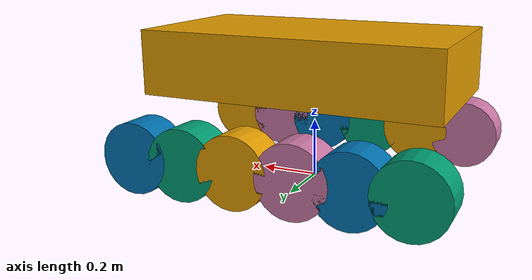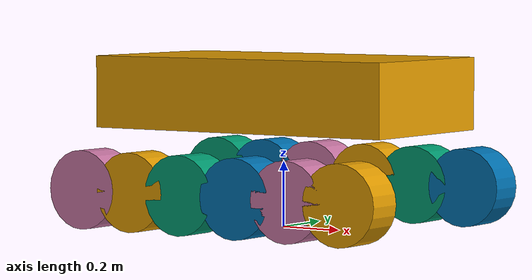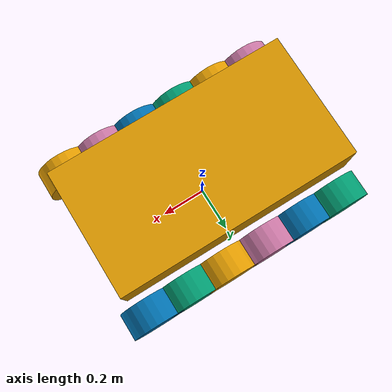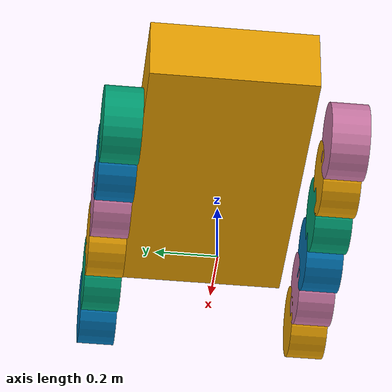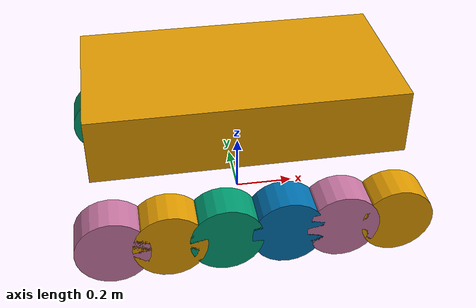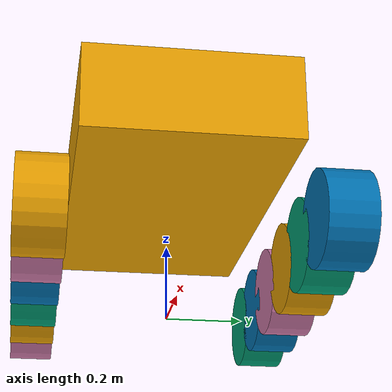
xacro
<?xml version='1.0'?>
<robot xmlns:xacro='http://www.ros.org/wiki/xacro' name='garden_tracked_guided'>
  <xacro:property name='variant' value='tracked_guided'/>
  <xacro:property name='mass_kg' value='65.0'/>
  <xacro:property name='track_gauge' value='0.7'/>
  <xacro:property name='wheel_radius' value='0.12'/>
  <xacro:property name='body_clearance' value='0.32'/>
  <link name='base_link'>
    <visual name='TRK4-BASE-001_visual'><origin xyz='0 0 0.41' rpy='0 0 0'/><geometry><box size='1.02 0.54 0.22'/></geometry></visual>
    <collision name='TRK4-BASE-001_collision'><origin xyz='0 0 0.41' rpy='0 0 0'/><geometry><box size='0.8 0.46 0.18'/></geometry></collision>
    <inertial><origin xyz='0 0 0.37' rpy='0 0 0'/><mass value='48.4'/><inertia ixx='1.3713333333333333' ixy='0' ixz='0' iyy='4.391493333333333' iyz='0' izz='5.3724'/></inertial>
  </link>
  <link name='left_carrier_0'/>
  <joint name='left_suspension_0' type='prismatic'><parent link='base_link'/><child link='left_carrier_0'/><origin xyz='-0.46 0.35 0.12' rpy='0 0 0'/><axis xyz='0 0 1'/><limit lower='-0.08' upper='0.08' effort='2500' velocity='1.5'/></joint>
  <link name='left_wheel'><visual name='TRK4-SPRUNG-GUIDE-ROLLER-001_visual_left_0'><geometry><cylinder radius='0.12' length='0.12'/></geometry></visual><collision name='TRK4-SPRUNG-GUIDE-ROLLER-001_collision_left_0'><geometry><cylinder radius='0.12' length='0.12'/></geometry></collision></link>
  <joint name='left_joint' type='continuous'><parent link='left_carrier_0'/><child link='left_wheel'/><origin xyz='0 0 0' rpy='1.57079632679 0 0'/><axis xyz='0 0 -1'/></joint>
  <link name='left_carrier_1'/>
  <joint name='left_suspension_1' type='prismatic'><parent link='base_link'/><child link='left_carrier_1'/><origin xyz='-0.28 0.35 0.12' rpy='0 0 0'/><axis xyz='0 0 1'/><limit lower='-0.08' upper='0.08' effort='2500' velocity='1.5'/></joint>
  <link name='left_wheel_1'><visual name='TRK4-SPRUNG-GUIDE-ROLLER-001_visual_left_1'><geometry><cylinder radius='0.12' length='0.12'/></geometry></visual><collision name='TRK4-SPRUNG-GUIDE-ROLLER-001_collision_left_1'><geometry><cylinder radius='0.12' length='0.12'/></geometry></collision></link>
  <joint name='left_joint_1' type='continuous'><parent link='left_carrier_1'/><child link='left_wheel_1'/><origin xyz='0 0 0' rpy='1.57079632679 0 0'/><axis xyz='0 0 -1'/></joint>
  <link name='left_carrier_2'/>
  <joint name='left_suspension_2' type='prismatic'><parent link='base_link'/><child link='left_carrier_2'/><origin xyz='-0.1 0.35 0.12' rpy='0 0 0'/><axis xyz='0 0 1'/><limit lower='-0.08' upper='0.08' effort='2500' velocity='1.5'/></joint>
  <link name='left_wheel_2'><visual name='TRK4-SPRUNG-GUIDE-ROLLER-001_visual_left_2'><geometry><cylinder radius='0.12' length='0.12'/></geometry></visual><collision name='TRK4-SPRUNG-GUIDE-ROLLER-001_collision_left_2'><geometry><cylinder radius='0.12' length='0.12'/></geometry></collision></link>
  <joint name='left_joint_2' type='continuous'><parent link='left_carrier_2'/><child link='left_wheel_2'/><origin xyz='0 0 0' rpy='1.57079632679 0 0'/><axis xyz='0 0 -1'/></joint>
  <link name='left_carrier_3'/>
  <joint name='left_suspension_3' type='prismatic'><parent link='base_link'/><child link='left_carrier_3'/><origin xyz='0.1 0.35 0.12' rpy='0 0 0'/><axis xyz='0 0 1'/><limit lower='-0.08' upper='0.08' effort='2500' velocity='1.5'/></joint>
  <link name='left_wheel_3'><visual name='TRK4-SPRUNG-GUIDE-ROLLER-001_visual_left_3'><geometry><cylinder radius='0.12' length='0.12'/></geometry></visual><collision name='TRK4-SPRUNG-GUIDE-ROLLER-001_collision_left_3'><geometry><cylinder radius='0.12' length='0.12'/></geometry></collision></link>
  <joint name='left_joint_3' type='continuous'><parent link='left_carrier_3'/><child link='left_wheel_3'/><origin xyz='0 0 0' rpy='1.57079632679 0 0'/><axis xyz='0 0 -1'/></joint>
  <link name='left_carrier_4'/>
  <joint name='left_suspension_4' type='prismatic'><parent link='base_link'/><child link='left_carrier_4'/><origin xyz='0.28 0.35 0.12' rpy='0 0 0'/><axis xyz='0 0 1'/><limit lower='-0.08' upper='0.08' effort='2500' velocity='1.5'/></joint>
  <link name='left_wheel_4'><visual name='TRK4-SPRUNG-GUIDE-ROLLER-001_visual_left_4'><geometry><cylinder radius='0.12' length='0.12'/></geometry></visual><collision name='TRK4-SPRUNG-GUIDE-ROLLER-001_collision_left_4'><geometry><cylinder radius='0.12' length='0.12'/></geometry></collision></link>
  <joint name='left_joint_4' type='continuous'><parent link='left_carrier_4'/><child link='left_wheel_4'/><origin xyz='0 0 0' rpy='1.57079632679 0 0'/><axis xyz='0 0 -1'/></joint>
  <link name='left_carrier_5'/>
  <joint name='left_suspension_5' type='prismatic'><parent link='base_link'/><child link='left_carrier_5'/><origin xyz='0.46 0.35 0.12' rpy='0 0 0'/><axis xyz='0 0 1'/><limit lower='-0.08' upper='0.08' effort='2500' velocity='1.5'/></joint>
  <link name='left_wheel_5'><visual name='TRK4-SPRUNG-GUIDE-ROLLER-001_visual_left_5'><geometry><cylinder radius='0.12' length='0.12'/></geometry></visual><collision name='TRK4-SPRUNG-GUIDE-ROLLER-001_collision_left_5'><geometry><cylinder radius='0.12' length='0.12'/></geometry></collision></link>
  <joint name='left_joint_5' type='continuous'><parent link='left_carrier_5'/><child link='left_wheel_5'/><origin xyz='0 0 0' rpy='1.57079632679 0 0'/><axis xyz='0 0 -1'/></joint>
  <link name='right_carrier_0'/>
  <joint name='right_suspension_0' type='prismatic'><parent link='base_link'/><child link='right_carrier_0'/><origin xyz='-0.46 -0.35 0.12' rpy='0 0 0'/><axis xyz='0 0 1'/><limit lower='-0.08' upper='0.08' effort='2500' velocity='1.5'/></joint>
  <link name='right_wheel'><visual name='TRK4-SPRUNG-GUIDE-ROLLER-001_visual_right_0'><geometry><cylinder radius='0.12' length='0.12'/></geometry></visual><collision name='TRK4-SPRUNG-GUIDE-ROLLER-001_collision_right_0'><geometry><cylinder radius='0.12' length='0.12'/></geometry></collision></link>
  <joint name='right_joint' type='continuous'><parent link='right_carrier_0'/><child link='right_wheel'/><origin xyz='0 0 0' rpy='1.57079632679 0 0'/><axis xyz='0 0 -1'/></joint>
  <link name='right_carrier_1'/>
  <joint name='right_suspension_1' type='prismatic'><parent link='base_link'/><child link='right_carrier_1'/><origin xyz='-0.28 -0.35 0.12' rpy='0 0 0'/><axis xyz='0 0 1'/><limit lower='-0.08' upper='0.08' effort='2500' velocity='1.5'/></joint>
  <link name='right_wheel_1'><visual name='TRK4-SPRUNG-GUIDE-ROLLER-001_visual_right_1'><geometry><cylinder radius='0.12' length='0.12'/></geometry></visual><collision name='TRK4-SPRUNG-GUIDE-ROLLER-001_collision_right_1'><geometry><cylinder radius='0.12' length='0.12'/></geometry></collision></link>
  <joint name='right_joint_1' type='continuous'><parent link='right_carrier_1'/><child link='right_wheel_1'/><origin xyz='0 0 0' rpy='1.57079632679 0 0'/><axis xyz='0 0 -1'/></joint>
  <link name='right_carrier_2'/>
  <joint name='right_suspension_2' type='prismatic'><parent link='base_link'/><child link='right_carrier_2'/><origin xyz='-0.1 -0.35 0.12' rpy='0 0 0'/><axis xyz='0 0 1'/><limit lower='-0.08' upper='0.08' effort='2500' velocity='1.5'/></joint>
  <link name='right_wheel_2'><visual name='TRK4-SPRUNG-GUIDE-ROLLER-001_visual_right_2'><geometry><cylinder radius='0.12' length='0.12'/></geometry></visual><collision name='TRK4-SPRUNG-GUIDE-ROLLER-001_collision_right_2'><geometry><cylinder radius='0.12' length='0.12'/></geometry></collision></link>
  <joint name='right_joint_2' type='continuous'><parent link='right_carrier_2'/><child link='right_wheel_2'/><origin xyz='0 0 0' rpy='1.57079632679 0 0'/><axis xyz='0 0 -1'/></joint>
  <link name='right_carrier_3'/>
  <joint name='right_suspension_3' type='prismatic'><parent link='base_link'/><child link='right_carrier_3'/><origin xyz='0.1 -0.35 0.12' rpy='0 0 0'/><axis xyz='0 0 1'/><limit lower='-0.08' upper='0.08' effort='2500' velocity='1.5'/></joint>
  <link name='right_wheel_3'><visual name='TRK4-SPRUNG-GUIDE-ROLLER-001_visual_right_3'><geometry><cylinder radius='0.12' length='0.12'/></geometry></visual><collision name='TRK4-SPRUNG-GUIDE-ROLLER-001_collision_right_3'><geometry><cylinder radius='0.12' length='0.12'/></geometry></collision></link>
  <joint name='right_joint_3' type='continuous'><parent link='right_carrier_3'/><child link='right_wheel_3'/><origin xyz='0 0 0' rpy='1.57079632679 0 0'/><axis xyz='0 0 -1'/></joint>
  <link name='right_carrier_4'/>
  <joint name='right_suspension_4' type='prismatic'><parent link='base_link'/><child link='right_carrier_4'/><origin xyz='0.28 -0.35 0.12' rpy='0 0 0'/><axis xyz='0 0 1'/><limit lower='-0.08' upper='0.08' effort='2500' velocity='1.5'/></joint>
  <link name='right_wheel_4'><visual name='TRK4-SPRUNG-GUIDE-ROLLER-001_visual_right_4'><geometry><cylinder radius='0.12' length='0.12'/></geometry></visual><collision name='TRK4-SPRUNG-GUIDE-ROLLER-001_collision_right_4'><geometry><cylinder radius='0.12' length='0.12'/></geometry></collision></link>
  <joint name='right_joint_4' type='continuous'><parent link='right_carrier_4'/><child link='right_wheel_4'/><origin xyz='0 0 0' rpy='1.57079632679 0 0'/><axis xyz='0 0 -1'/></joint>
  <link name='right_carrier_5'/>
  <joint name='right_suspension_5' type='prismatic'><parent link='base_link'/><child link='right_carrier_5'/><origin xyz='0.46 -0.35 0.12' rpy='0 0 0'/><axis xyz='0 0 1'/><limit lower='-0.08' upper='0.08' effort='2500' velocity='1.5'/></joint>
  <link name='right_wheel_5'><visual name='TRK4-SPRUNG-GUIDE-ROLLER-001_visual_right_5'><geometry><cylinder radius='0.12' length='0.12'/></geometry></visual><collision name='TRK4-SPRUNG-GUIDE-ROLLER-001_collision_right_5'><geometry><cylinder radius='0.12' length='0.12'/></geometry></collision></link>
  <joint name='right_joint_5' type='continuous'><parent link='right_carrier_5'/><child link='right_wheel_5'/><origin xyz='0 0 0' rpy='1.57079632679 0 0'/><axis xyz='0 0 -1'/></joint>
  <!-- Future CAD references: TRK4-BASE-001, TRK4-BELT-GUIDE-001, TRK4-SPRUNG-GUIDE-ROLLER-001. Visual and collision geometry remain separate. -->
</robot>
